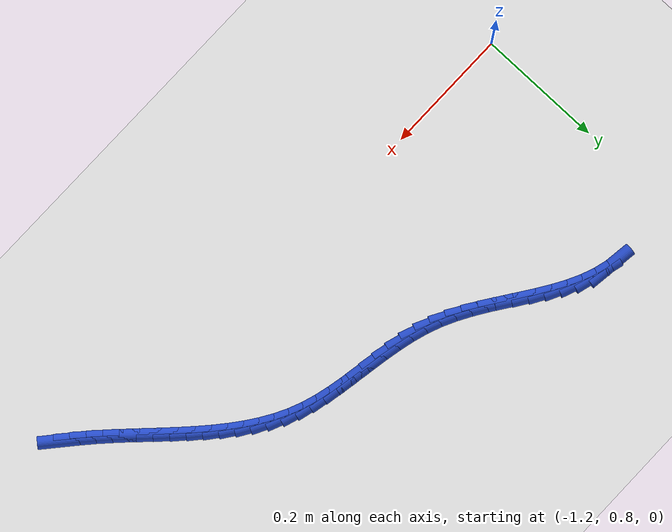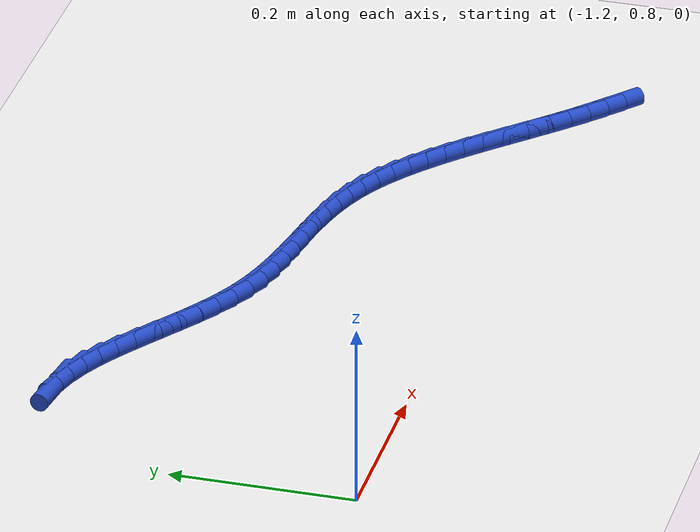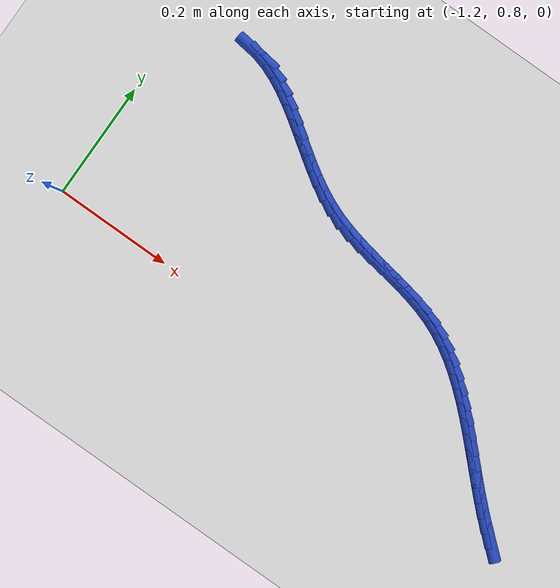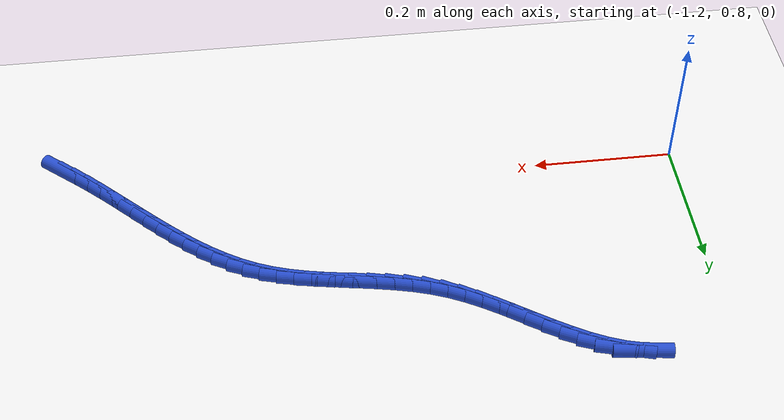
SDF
<sdf version="1.6">
 <world name="default">
  <model name="ground_plane">
   <static>1</static>
   <link name="link">
    <collision name="collision">
     <geometry><plane><normal>0 0 1</normal><size>100 100</size></plane></geometry>
     <surface><friction><ode><mu>100</mu><mu2>50</mu2></ode></friction></surface>
    </collision>
    <visual name="visual">
     <cast_shadows>0</cast_shadows>
     <geometry><plane><normal>0 0 1</normal><size>100 100</size></plane></geometry>
     <material>
      <script><uri>file://media/materials/scripts/gazebo.material</uri><name>Gazebo/WhiteGlow</name></script>
     </material>
    </visual>
   </link>
  </model>
  <model name="line">
   <link name="link_35">
    <pose>-0.3254443451604827 0.7429177474934352 0.01 0 1.57 -0.7128167071255693</pose>
    <collision name="collision">
     <geometry><cylinder><radius>0.01</radius><length>0.08</length></cylinder></geometry>
    </collision>
    <visual name="visual">
     <material>
      <script><name>Gazebo/Blue</name><uri>file://media/materials/scripts/gazebo.material</uri></script>
     </material>
     <geometry><cylinder><radius>0.01</radius><length>0.08</length></cylinder></geometry>
    </visual>
   </link>
   <link name="link_36">
    <pose>-0.3437377332206625 0.75873125140278 0.01 0 1.57 -0.7349488194673364</pose>
    <collision name="collision">
     <geometry><cylinder><radius>0.01</radius><length>0.08</length></cylinder></geometry>
    </collision>
    <visual name="visual">
     <material>
      <script><name>Gazebo/Blue</name><uri>file://media/materials/scripts/gazebo.material</uri></script>
     </material>
     <geometry><cylinder><radius>0.01</radius><length>0.08</length></cylinder></geometry>
    </visual>
   </link>
   <link name="link_37">
    <pose>-0.3618151849092859 0.7750709079997502 0.01 0 1.57 -0.7595095492451638</pose>
    <collision name="collision">
     <geometry><cylinder><radius>0.01</radius><length>0.08</length></cylinder></geometry>
    </collision>
    <visual name="visual">
     <material>
      <script><name>Gazebo/Blue</name><uri>file://media/materials/scripts/gazebo.material</uri></script>
     </material>
     <geometry><cylinder><radius>0.01</radius><length>0.08</length></cylinder></geometry>
    </visual>
   </link>
   <link name="link_38">
    <pose>-0.37963922004346307 0.7919951571815517 0.01 0 1.57 -0.7764745601534427</pose>
    <collision name="collision">
     <geometry><cylinder><radius>0.01</radius><length>0.08</length></cylinder></geometry>
    </collision>
    <visual name="visual">
     <material>
      <script><name>Gazebo/Blue</name><uri>file://media/materials/scripts/gazebo.material</uri></script>
     </material>
     <geometry><cylinder><radius>0.01</radius><length>0.08</length></cylinder></geometry>
    </visual>
   </link>
   <link name="link_39">
    <pose>-0.39728627668958955 0.8093300405877113 0.01 0 1.57 -0.7852464354962679</pose>
    <collision name="collision">
     <geometry><cylinder><radius>0.01</radius><length>0.08</length></cylinder></geometry>
    </collision>
    <visual name="visual">
     <material>
      <script><name>Gazebo/Blue</name><uri>file://media/materials/scripts/gazebo.material</uri></script>
     </material>
     <geometry><cylinder><radius>0.01</radius><length>0.08</length></cylinder></geometry>
    </visual>
   </link>
   <link name="link_40">
    <pose>-0.41484278285485815 0.8268812199375005 0.01 0 1.57 -0.7859889964515014</pose>
    <collision name="collision">
     <geometry><cylinder><radius>0.01</radius><length>0.08</length></cylinder></geometry>
    </collision>
    <visual name="visual">
     <material>
      <script><name>Gazebo/Blue</name><uri>file://media/materials/scripts/gazebo.material</uri></script>
     </material>
     <geometry><cylinder><radius>0.01</radius><length>0.08</length></cylinder></geometry>
    </visual>
   </link>
   <link name="link_41">
    <pose>-0.4323951665464626 0.8444543569501928 0.01 0 1.57 -0.7787212295163041</pose>
    <collision name="collision">
     <geometry><cylinder><radius>0.01</radius><length>0.08</length></cylinder></geometry>
    </collision>
    <visual name="visual">
     <material>
      <script><name>Gazebo/Blue</name><uri>file://media/materials/scripts/gazebo.material</uri></script>
     </material>
     <geometry><cylinder><radius>0.01</radius><length>0.08</length></cylinder></geometry>
    </visual>
   </link>
   <link name="link_42">
    <pose>-0.45002985577159643 0.8618551133450605 0.01 0 1.57 -0.7633167541371441</pose>
    <collision name="collision">
     <geometry><cylinder><radius>0.01</radius><length>0.08</length></cylinder></geometry>
    </collision>
    <visual name="visual">
     <material>
      <script><name>Gazebo/Blue</name><uri>file://media/materials/scripts/gazebo.material</uri></script>
     </material>
     <geometry><cylinder><radius>0.01</radius><length>0.08</length></cylinder></geometry>
    </visual>
   </link>
   <link name="link_43">
    <pose>-0.4678332785374528 0.8788891508413755 0.01 0 1.57 -0.73951286834374</pose>
    <collision name="collision">
     <geometry><cylinder><radius>0.01</radius><length>0.08</length></cylinder></geometry>
    </collision>
    <visual name="visual">
     <material>
      <script><name>Gazebo/Blue</name><uri>file://media/materials/scripts/gazebo.material</uri></script>
     </material>
     <geometry><cylinder><radius>0.01</radius><length>0.08</length></cylinder></geometry>
    </visual>
   </link>
   <link name="link_44">
    <pose>-0.4858918628512257 0.8953621311584112 0.01 0 1.57 -0.7069322449732386</pose>
    <collision name="collision">
     <geometry><cylinder><radius>0.01</radius><length>0.08</length></cylinder></geometry>
    </collision>
    <visual name="visual">
     <material>
      <script><name>Gazebo/Blue</name><uri>file://media/materials/scripts/gazebo.material</uri></script>
     </material>
     <geometry><cylinder><radius>0.01</radius><length>0.08</length></cylinder></geometry>
    </visual>
   </link>
   <link name="link_45">
    <pose>-0.5042920367201082 0.9110797160154395 0.01 0 1.57 -0.6651238023309737</pose>
    <collision name="collision">
     <geometry><cylinder><radius>0.01</radius><length>0.08</length></cylinder></geometry>
    </collision>
    <visual name="visual">
     <material>
      <script><name>Gazebo/Blue</name><uri>file://media/materials/scripts/gazebo.material</uri></script>
     </material>
     <geometry><cylinder><radius>0.01</radius><length>0.08</length></cylinder></geometry>
    </visual>
   </link>
   <link name="link_46">
    <pose>-0.5231202281512937 0.9258475671317327 0.01 0 1.57 -0.6136323024679909</pose>
    <collision name="collision">
     <geometry><cylinder><radius>0.01</radius><length>0.08</length></cylinder></geometry>
    </collision>
    <visual name="visual">
     <material>
      <script><name>Gazebo/Blue</name><uri>file://media/materials/scripts/gazebo.material</uri></script>
     </material>
     <geometry><cylinder><radius>0.01</radius><length>0.08</length></cylinder></geometry>
    </visual>
   </link>
   <link name="link_47">
    <pose>-0.542462865151976 0.939471346226564 0.01 0 1.57 -0.5521072558134386</pose>
    <collision name="collision">
     <geometry><cylinder><radius>0.01</radius><length>0.08</length></cylinder></geometry>
    </collision>
    <visual name="visual">
     <material>
      <script><name>Gazebo/Blue</name><uri>file://media/materials/scripts/gazebo.material</uri></script>
     </material>
     <geometry><cylinder><radius>0.01</radius><length>0.08</length></cylinder></geometry>
    </visual>
   </link>
   <link name="link_48">
    <pose>-0.5624063757293483 0.9517567150192054 0.01 0 1.57 -0.48045734838819515</pose>
    <collision name="collision">
     <geometry><cylinder><radius>0.01</radius><length>0.08</length></cylinder></geometry>
    </collision>
    <visual name="visual">
     <material>
      <script><name>Gazebo/Blue</name><uri>file://media/materials/scripts/gazebo.material</uri></script>
     </material>
     <geometry><cylinder><radius>0.01</radius><length>0.08</length></cylinder></geometry>
    </visual>
   </link>
   <link name="link_49">
    <pose>-0.5830371878906041 0.9625093352289295 0.01 0 1.57 -0.3991096197134732</pose>
    <collision name="collision">
     <geometry><cylinder><radius>0.01</radius><length>0.08</length></cylinder></geometry>
    </collision>
    <visual name="visual">
     <material>
      <script><name>Gazebo/Blue</name><uri>file://media/materials/scripts/gazebo.material</uri></script>
     </material>
     <geometry><cylinder><radius>0.01</radius><length>0.08</length></cylinder></geometry>
    </visual>
   </link>
   <link name="link_50">
    <pose>-0.6044411503199689 0.9715363295434094 0.01 0 1.57 -0.3175064259588838</pose>
    <collision name="collision">
     <geometry><cylinder><radius>0.01</radius><length>0.08</length></cylinder></geometry>
    </collision>
    <visual name="visual">
     <material>
      <script><name>Gazebo/Blue</name><uri>file://media/materials/scripts/gazebo.material</uri></script>
     </material>
     <geometry><cylinder><radius>0.01</radius><length>0.08</length></cylinder></geometry>
    </visual>
   </link>
   <link name="link_51">
    <pose>-0.6266312613865792 0.9788285385662269 0.01 0 1.57 -0.25309000842806595</pose>
    <collision name="collision">
     <geometry><cylinder><radius>0.01</radius><length>0.08</length></cylinder></geometry>
    </collision>
    <visual name="visual">
     <material>
      <script><name>Gazebo/Blue</name><uri>file://media/materials/scripts/gazebo.material</uri></script>
     </material>
     <geometry><cylinder><radius>0.01</radius><length>0.08</length></cylinder></geometry>
    </visual>
   </link>
   <link name="link_52">
    <pose>-0.6494775283159376 0.9847374058011713 0.01 0 1.57 -0.20757520173808963</pose>
    <collision name="collision">
     <geometry><cylinder><radius>0.01</radius><length>0.08</length></cylinder></geometry>
    </collision>
    <visual name="visual">
     <material>
      <script><name>Gazebo/Blue</name><uri>file://media/materials/scripts/gazebo.material</uri></script>
     </material>
     <geometry><cylinder><radius>0.01</radius><length>0.08</length></cylinder></geometry>
    </visual>
   </link>
   <link name="link_53">
    <pose>-0.6728333175558965 0.9896563403768219 0.01 0 1.57 -0.18025849099294847</pose>
    <collision name="collision">
     <geometry><cylinder><radius>0.01</radius><length>0.08</length></cylinder></geometry>
    </collision>
    <visual name="visual">
     <material>
      <script><name>Gazebo/Blue</name><uri>file://media/materials/scripts/gazebo.material</uri></script>
     </material>
     <geometry><cylinder><radius>0.01</radius><length>0.08</length></cylinder></geometry>
    </visual>
   </link>
   <link name="link_54">
    <pose>-0.6965519955543079 0.9939787514217587 0.01 0 1.57 -0.170434301298606</pose>
    <collision name="collision">
     <geometry><cylinder><radius>0.01</radius><length>0.08</length></cylinder></geometry>
    </collision>
    <visual name="visual">
     <material>
      <script><name>Gazebo/Blue</name><uri>file://media/materials/scripts/gazebo.material</uri></script>
     </material>
     <geometry><cylinder><radius>0.01</radius><length>0.08</length></cylinder></geometry>
    </visual>
   </link>
   <link name="link_55">
    <pose>-0.720486928759025 0.9980980480645618 0.01 0 1.57 -0.1776398156680651</pose>
    <collision name="collision">
     <geometry><cylinder><radius>0.01</radius><length>0.08</length></cylinder></geometry>
    </collision>
    <visual name="visual">
     <material>
      <script><name>Gazebo/Blue</name><uri>file://media/materials/scripts/gazebo.material</uri></script>
     </material>
     <geometry><cylinder><radius>0.01</radius><length>0.08</length></cylinder></geometry>
    </visual>
   </link>
   <link name="link_56">
    <pose>-0.7444914836179 1.0024076394338106 0.01 0 1.57 -0.2017232353086843</pose>
    <collision name="collision">
     <geometry><cylinder><radius>0.01</radius><length>0.08</length></cylinder></geometry>
    </collision>
    <visual name="visual">
     <material>
      <script><name>Gazebo/Blue</name><uri>file://media/materials/scripts/gazebo.material</uri></script>
     </material>
     <geometry><cylinder><radius>0.01</radius><length>0.08</length></cylinder></geometry>
    </visual>
   </link>
   <link name="link_57">
    <pose>-0.768419026578785 1.0073009346580846 0.01 0 1.57 -0.2427711633547543</pose>
    <collision name="collision">
     <geometry><cylinder><radius>0.01</radius><length>0.08</length></cylinder></geometry>
    </collision>
    <visual name="visual">
     <material>
      <script><name>Gazebo/Blue</name><uri>file://media/materials/scripts/gazebo.material</uri></script>
     </material>
     <geometry><cylinder><radius>0.01</radius><length>0.08</length></cylinder></geometry>
    </visual>
   </link>
   <link name="link_58">
    <pose>-0.7921229240895328 1.013171342865964 0.01 0 1.57 -0.30089922278817965</pose>
    <collision name="collision">
     <geometry><cylinder><radius>0.01</radius><length>0.08</length></cylinder></geometry>
    </collision>
    <visual name="visual">
     <material>
      <script><name>Gazebo/Blue</name><uri>file://media/materials/scripts/gazebo.material</uri></script>
     </material>
     <geometry><cylinder><radius>0.01</radius><length>0.08</length></cylinder></geometry>
    </visual>
   </link>
   <link name="link_59">
    <pose>-0.8154565425979957 1.0204122731860286 0.01 0 1.57 -0.3758530031502557</pose>
    <collision name="collision">
     <geometry><cylinder><radius>0.01</radius><length>0.08</length></cylinder></geometry>
    </collision>
    <visual name="visual">
     <material>
      <script><name>Gazebo/Blue</name><uri>file://media/materials/scripts/gazebo.material</uri></script>
     </material>
     <geometry><cylinder><radius>0.01</radius><length>0.08</length></cylinder></geometry>
    </visual>
   </link>
   <link name="link_60">
    <pose>-0.8382735480699083 1.029416139086231 0.01 0 1.57 -0.45685468386679484</pose>
    <collision name="collision">
     <geometry><cylinder><radius>0.01</radius><length>0.08</length></cylinder></geometry>
    </collision>
    <visual name="visual">
     <material>
      <script><name>Gazebo/Blue</name><uri>file://media/materials/scripts/gazebo.material</uri></script>
     </material>
     <geometry><cylinder><radius>0.01</radius><length>0.08</length></cylinder></geometry>
    </visual>
   </link>
   <link name="link_61">
    <pose>-0.860498278173993 1.040340426384787 0.01 0 1.57 -0.5210684827153949</pose>
    <collision name="collision">
     <geometry><cylinder><radius>0.01</radius><length>0.08</length></cylinder></geometry>
    </collision>
    <visual name="visual">
     <material>
      <script><name>Gazebo/Blue</name><uri>file://media/materials/scripts/gazebo.material</uri></script>
     </material>
     <geometry><cylinder><radius>0.01</radius><length>0.08</length></cylinder></geometry>
    </visual>
   </link>
   <link name="link_62">
    <pose>-0.8822164262227498 1.0528062407001735 0.01 0 1.57 -0.566290844780955</pose>
    <collision name="collision">
     <geometry><cylinder><radius>0.01</radius><length>0.08</length></cylinder></geometry>
    </collision>
    <visual name="visual">
     <material>
      <script><name>Gazebo/Blue</name><uri>file://media/materials/scripts/gazebo.material</uri></script>
     </material>
     <geometry><cylinder><radius>0.01</radius><length>0.08</length></cylinder></geometry>
    </visual>
   </link>
   <link name="link_63">
    <pose>-0.9035360996010947 1.0663601785456502 0.01 0 1.57 -0.5935495885012775</pose>
    <collision name="collision">
     <geometry><cylinder><radius>0.01</radius><length>0.08</length></cylinder></geometry>
    </collision>
    <visual name="visual">
     <material>
      <script><name>Gazebo/Blue</name><uri>file://media/materials/scripts/gazebo.material</uri></script>
     </material>
     <geometry><cylinder><radius>0.01</radius><length>0.08</length></cylinder></geometry>
    </visual>
   </link>
   <link name="link_64">
    <pose>-0.9245654056939439 1.0805488364344775 0.01 0 1.57 -0.6035120312592145</pose>
    <collision name="collision">
     <geometry><cylinder><radius>0.01</radius><length>0.08</length></cylinder></geometry>
    </collision>
    <visual name="visual">
     <material>
      <script><name>Gazebo/Blue</name><uri>file://media/materials/scripts/gazebo.material</uri></script>
     </material>
     <geometry><cylinder><radius>0.01</radius><length>0.08</length></cylinder></geometry>
    </visual>
   </link>
   <link name="link_65">
    <pose>-0.9454124518862134 1.0949188108799155 0.01 0 1.57 -0.5962649100023555</pose>
    <collision name="collision">
     <geometry><cylinder><radius>0.01</radius><length>0.08</length></cylinder></geometry>
    </collision>
    <visual name="visual">
     <material>
      <script><name>Gazebo/Blue</name><uri>file://media/materials/scripts/gazebo.material</uri></script>
     </material>
     <geometry><cylinder><radius>0.01</radius><length>0.08</length></cylinder></geometry>
    </visual>
   </link>
   <link name="link_66">
    <pose>-0.9661853455628191 1.1090166983952239 0.01 0 1.57 -0.5712206868498659</pose>
    <collision name="collision">
     <geometry><cylinder><radius>0.01</radius><length>0.08</length></cylinder></geometry>
    </collision>
    <visual name="visual">
     <material>
      <script><name>Gazebo/Blue</name><uri>file://media/materials/scripts/gazebo.material</uri></script>
     </material>
     <geometry><cylinder><radius>0.01</radius><length>0.08</length></cylinder></geometry>
    </visual>
   </link>
   <link name="link_67">
    <pose>-0.9869921941086768 1.1223890954936628 0.01 0 1.57 -0.5271231632081871</pose>
    <collision name="collision">
     <geometry><cylinder><radius>0.01</radius><length>0.08</length></cylinder></geometry>
    </collision>
    <visual name="visual">
     <material>
      <script><name>Gazebo/Blue</name><uri>file://media/materials/scripts/gazebo.material</uri></script>
     </material>
     <geometry><cylinder><radius>0.01</radius><length>0.08</length></cylinder></geometry>
    </visual>
   </link>
   <link name="link_68">
    <pose>-1.0079411049087028 1.1345825986884923 0.01 0 1.57 -0.46219991841477687</pose>
    <collision name="collision">
     <geometry><cylinder><radius>0.01</radius><length>0.08</length></cylinder></geometry>
    </collision>
    <visual name="visual">
     <material>
      <script><name>Gazebo/Blue</name><uri>file://media/materials/scripts/gazebo.material</uri></script>
     </material>
     <geometry><cylinder><radius>0.01</radius><length>0.08</length></cylinder></geometry>
    </visual>
   </link>
   <link name="link_69">
    <pose>-1.0291401853478133 1.1451438044929727 0.01 0 1.57 -0.37459652682225225</pose>
    <collision name="collision">
     <geometry><cylinder><radius>0.01</radius><length>0.08</length></cylinder></geometry>
    </collision>
    <visual name="visual">
     <material>
      <script><name>Gazebo/Blue</name><uri>file://media/materials/scripts/gazebo.material</uri></script>
     </material>
     <geometry><cylinder><radius>0.01</radius><length>0.08</length></cylinder></geometry>
    </visual>
   </link>
   <link name="link_70">
    <pose>-1.0506975428109242 1.153619309420364 0.01 0 1.57 -0.26328816986447695</pose>
    <collision name="collision">
     <geometry><cylinder><radius>0.01</radius><length>0.08</length></cylinder></geometry>
    </collision>
    <visual name="visual">
     <material>
      <script><name>Gazebo/Blue</name><uri>file://media/materials/scripts/gazebo.material</uri></script>
     </material>
     <geometry><cylinder><radius>0.01</radius><length>0.08</length></cylinder></geometry>
    </visual>
   </link>
   <link name="link_71">
    <pose>-1.0727212846829515 1.159555709983926 0.01 0 1.57 -0.12954141335783242</pose>
    <collision name="collision">
     <geometry><cylinder><radius>0.01</radius><length>0.08</length></cylinder></geometry>
    </collision>
    <visual name="visual">
     <material>
      <script><name>Gazebo/Blue</name><uri>file://media/materials/scripts/gazebo.material</uri></script>
     </material>
     <geometry><cylinder><radius>0.01</radius><length>0.08</length></cylinder></geometry>
    </visual>
   </link>
  </model>
 </world>
</sdf>
